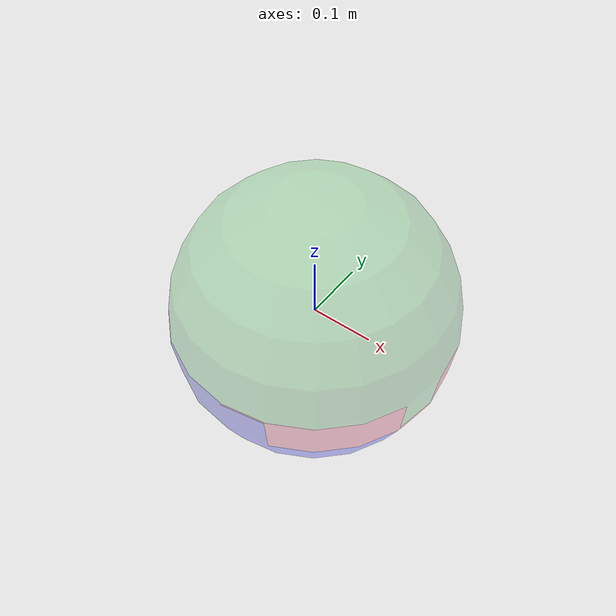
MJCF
<mujoco model="desk_lamp">
  <asset>
  <mesh file="desk_lamp/base.stl" name="part_base" scale="0.011250000000000003 0.011250000000000003 0.011250000000000003" />
    <mesh file="desk_lamp/arm.stl" name="part_arm" scale="0.011250000000000003 0.011250000000000003 0.011250000000000003" />
    <mesh file="desk_lamp/head.stl" name="part_head" scale="0.011250000000000003 0.011250000000000003 0.011250000000000003" />
  </asset>
  <equality>
  <weld active="false" body1="arm_part" body2="base_part" solimp="1 1 0.5" solref="0.01 0.3" /><weld active="false" body1="arm_part" body2="head_part" solimp="1 1 0.5" solref="0.01 0.3" />
  <weld active="false" body1="arm_part" body2="base_part" solimp="1 1 0.5" solref="0.01 0.3" /><weld active="false" body1="arm_part" body2="head_part" solimp="1 1 0.5" solref="0.01 0.3" />
  </equality>
  <worldbody>
    <body name="arm_part" pos="0.0 0.0 0.0" quat="1 0 0 0">
      <geom conaffinity="0" contype="0" density="0" mesh="part_arm" name="arm_part_mesh" pos="0.0 0.0 0.0" rgba="0.82 0.71 0.55 1" type="mesh" />
      <site name="arm_part_horizontal_radius_site" pos="0.0 0.0 0.0" quat="1 0 0 0" rgba="0 0 1 0.3" size="0.22500000000000003" />
      <site name="arm_part_bottom_site-base_part_top_site,conn_site1" pos="0.0005298750000000001 8.55e-05 0.0009675" quat="1 0 0 0" rgba="0.9019 0.0980 0.2941 0.3" size="0.22500000000000003" />
      <site name="arm_part_top_site-head_part_bottom_site,conn_site1" pos="0.0013882500000000002 0.0 0.006432750000000001" quat="1 0 0 0" rgba="0.2352 0.7058 0.2941 0.3" size="0.22500000000000003" />
    </body>
    <body name="base_part" pos="0.0 0.0 0.0" quat="1 0 0 0">
      <geom conaffinity="0" contype="0" density="0" mesh="part_base" name="base_part_mesh" pos="0.0 0.0 0.0" rgba="0.82 0.71 0.55 1" type="mesh" />
      <site name="base_part_horizontal_radius_site" pos="0.0 0.0 0.0" quat="1 0 0 0" rgba="0 0 1 0.3" size="0.22500000000000003" />
      <site name="base_part_top_site-arm_part_bottom_site,conn_site1" pos="0.0005298750000000001 8.55e-05 0.0009675" quat="1 0 0 0" rgba="0.9019 0.0980 0.2941 0.3" size="0.22500000000000003" />
    </body>
    <body name="head_part" pos="0.0 0.0 0.0" quat="1 0 0 0">
      <geom conaffinity="0" contype="0" density="0" mesh="part_head" name="head_part_mesh" pos="0.0 0.0 0.0" rgba="0.82 0.71 0.55 1" type="mesh" />
      <site name="head_part_horizontal_radius_site" pos="0.0 0.0 0.0" quat="1 0 0 0" rgba="0 0 1 0.3" size="0.22500000000000003" />
      <site name="head_part_bottom_site-arm_part_top_site,conn_site1" pos="0.0013882500000000002 0.0 0.006432750000000001" quat="1 0 0 0" rgba="0.2352 0.7058 0.2941 0.3" size="0.22500000000000003" />
    </body>
  </worldbody>
</mujoco>
